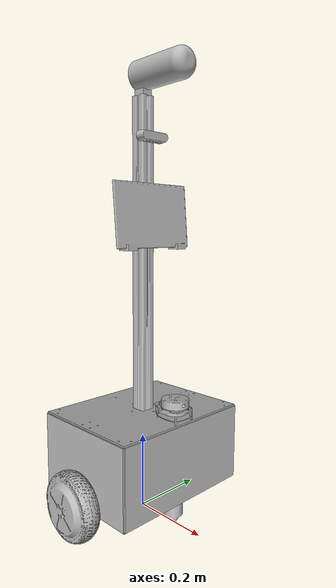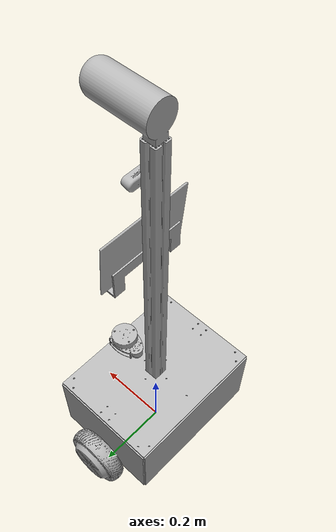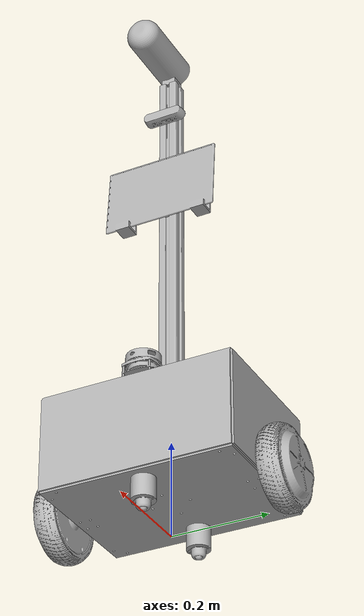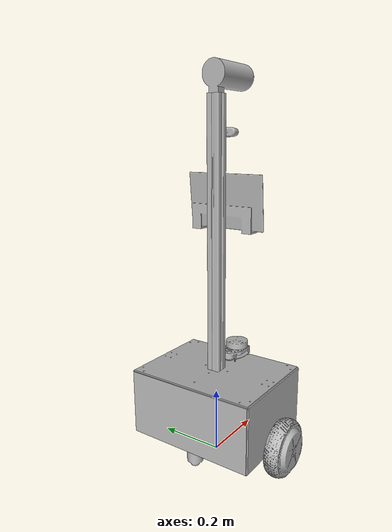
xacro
<?xml version="1.0" ?>
<robot name="zordon" xmlns:xacro="http://www.ros.org/wiki/xacro">

<xacro:include filename="$(find zordon_description)/urdf/materials.xacro" />
<xacro:include filename="$(find zordon_description)/urdf/zordon.trans" />
<xacro:include filename="$(find zordon_description)/gazebo/zordon_materials.gazebo" />
<xacro:include filename="$(find zordon_description)/gazebo/zordon_physics.gazebo" />
<xacro:include filename="$(find zordon_description)/gazebo/zordon_plugins.gazebo" />
<link name="base_link">
  <inertial>
    <origin rpy="0 0 0" xyz="3.723064469949281e-11 9.812910051877157e-15 0.1677003082448717"/>
    <mass value="6.166046891255742"/>
    <inertia ixx="0.169392" ixy="-0.0" ixz="0.0" iyy="0.114116" iyz="0.0" izz="0.204222"/>
  </inertial>
  <visual>
    <origin rpy="0 0 0" xyz="0 0 0"/>
    <geometry>
      <mesh filename="package://zordon_description/meshes/base_link.stl" scale="0.001 0.001 0.001"/>
    </geometry>
    <material name="silver"/>
  </visual>
  <collision>
    <origin rpy="0 0 0" xyz="0 0 0"/>
    <geometry>
      <mesh filename="package://zordon_description/meshes/base_link.stl" scale="0.001 0.001 0.001"/>
    </geometry>
  </collision>
</link>

<link name="pole_1">
  <inertial>
    <origin rpy="0 0 0" xyz="3.10450794759463e-05 -2.372663241329333e-05 0.5039999999999967"/>
    <mass value="2.155664789467976"/>
    <inertia ixx="0.179974" ixy="-0.0" ixz="0.0" iyy="0.179974" iyz="0.0" izz="0.000671"/>
  </inertial>
  <visual>
    <origin rpy="0 0 0" xyz="-0.0 -0.0 -0.068"/>
    <geometry>
      <mesh filename="package://zordon_description/meshes/pole_1.stl" scale="0.001 0.001 0.001"/>
    </geometry>
    <material name="silver"/>
  </visual>
  <collision>
    <origin rpy="0 0 0" xyz="-0.0 -0.0 -0.068"/>
    <geometry>
      <mesh filename="package://zordon_description/meshes/pole_1.stl" scale="0.001 0.001 0.001"/>
    </geometry>
  </collision>
</link>

<link name="carrier_front_1">
  <inertial>
    <origin rpy="0 0 0" xyz="-0.0024999999999974487 -1.397762717635236e-16 -0.025354972716120354"/>
    <mass value="0.09483644907031868"/>
    <inertia ixx="3.6e-05" ixy="-0.0" ixz="0.0" iyy="3.6e-05" iyz="-0.0" izz="2.6e-05"/>
  </inertial>
  <visual>
    <origin rpy="0 0 0" xyz="-0.115 -0.0 -0.068"/>
    <geometry>
      <mesh filename="package://zordon_description/meshes/carrier_front_1.stl" scale="0.001 0.001 0.001"/>
    </geometry>
    <material name="silver"/>
  </visual>
  <collision>
    <origin rpy="0 0 0" xyz="-0.115 -0.0 -0.068"/>
    <geometry>
      <mesh filename="package://zordon_description/meshes/carrier_front_1.stl" scale="0.001 0.001 0.001"/>
    </geometry>
  </collision>
</link>

<link name="carrier_back_1">
  <inertial>
    <origin rpy="0 0 0" xyz="-0.002499999999997296 4.1297534839222783e-17 -0.025354972716120402"/>
    <mass value="0.0948364490703189"/>
    <inertia ixx="3.6e-05" ixy="-0.0" ixz="0.0" iyy="3.6e-05" iyz="-0.0" izz="2.6e-05"/>
  </inertial>
  <visual>
    <origin rpy="0 0 0" xyz="0.11 -0.0 -0.068"/>
    <geometry>
      <mesh filename="package://zordon_description/meshes/carrier_back_1.stl" scale="0.001 0.001 0.001"/>
    </geometry>
    <material name="silver"/>
  </visual>
  <collision>
    <origin rpy="0 0 0" xyz="0.11 -0.0 -0.068"/>
    <geometry>
      <mesh filename="package://zordon_description/meshes/carrier_back_1.stl" scale="0.001 0.001 0.001"/>
    </geometry>
  </collision>
</link>

<link name="lidar_1">
  <inertial>
    <origin rpy="0 0 0" xyz="-0.0010033154083776002 -0.0003817946669328166 0.015807130062577945"/>
    <mass value="0.007170764998860483"/>
    <inertia ixx="3e-06" ixy="-0.0" ixz="-0.0" iyy="3e-06" iyz="-0.0" izz="6e-06"/>
  </inertial>
  <visual>
    <origin rpy="0 0 0" xyz="-0.117069 0.0 -0.3091"/>
    <geometry>
      <mesh filename="package://zordon_description/meshes/lidar_1.stl" scale="0.001 0.001 0.001"/>
    </geometry>
    <material name="silver"/>
  </visual>
  <collision>
    <origin rpy="0 0 0" xyz="-0.117069 0.0 -0.3091"/>
    <geometry>
      <mesh filename="package://zordon_description/meshes/lidar_1.stl" scale="0.001 0.001 0.001"/>
    </geometry>
  </collision>
</link>

<link name="lid_1">
  <inertial>
    <origin rpy="0 0 0" xyz="-0.04720749127638976 0.0004637112712617533 0.021708879448325114"/>
    <mass value="0.17366909548885806"/>
    <inertia ixx="6.2e-05" ixy="-2e-06" ixz="-1e-05" iyy="0.000139" iyz="-1e-06" izz="0.000172"/>
  </inertial>
  <visual>
    <origin rpy="0 0 0" xyz="-0.15 -0.0 -0.276"/>
    <geometry>
      <mesh filename="package://zordon_description/meshes/lid_1.stl" scale="0.001 0.001 0.001"/>
    </geometry>
    <material name="silver"/>
  </visual>
  <collision>
    <origin rpy="0 0 0" xyz="-0.15 -0.0 -0.276"/>
    <geometry>
      <mesh filename="package://zordon_description/meshes/lid_1.stl" scale="0.001 0.001 0.001"/>
    </geometry>
  </collision>
</link>

<link name="wheel_right_1">
  <inertial>
    <origin rpy="0 0 0" xyz="5.1628512443653294e-06 0.03242281804149211 -7.253380073207749e-06"/>
    <mass value="2.1454234162659307"/>
    <inertia ixx="0.004766" ixy="-0.0" ixz="0.0" iyy="0.008516" iyz="-1e-06" izz="0.004766"/>
  </inertial>
  <visual>
    <origin rpy="0 0 0" xyz="-0.0 -0.204 -0.087"/>
    <geometry>
      <mesh filename="package://zordon_description/meshes/wheel_right_1.stl" scale="0.001 0.001 0.001"/>
    </geometry>
    <material name="silver"/>
  </visual>
  <collision>
    <origin rpy="0 0 0" xyz="-0.0 -0.204 -0.087"/>
    <geometry>
      <mesh filename="package://zordon_description/meshes/wheel_right_1.stl" scale="0.001 0.001 0.001"/>
    </geometry>
  </collision>
</link>

<link name="wheel_left_1">
  <inertial>
    <origin rpy="0 0 0" xyz="-5.163218988545872e-06 -0.03242281824339943 -7.253484136743316e-06"/>
    <mass value="2.145423356423246"/>
    <inertia ixx="0.004766" ixy="-0.0" ixz="-0.0" iyy="0.008516" iyz="1e-06" izz="0.004766"/>
  </inertial>
  <visual>
    <origin rpy="0 0 0" xyz="0.0 0.204 -0.087"/>
    <geometry>
      <mesh filename="package://zordon_description/meshes/wheel_left_1.stl" scale="0.001 0.001 0.001"/>
    </geometry>
    <material name="silver"/>
  </visual>
  <collision>
    <origin rpy="0 0 0" xyz="0.0 0.204 -0.087"/>
    <geometry>
      <mesh filename="package://zordon_description/meshes/wheel_left_1.stl" scale="0.001 0.001 0.001"/>
    </geometry>
  </collision>
</link>

<link name="tablet_1">
  <inertial>
    <origin rpy="0 0 0" xyz="0.029419729738753522 -0.004113787966319606 0.2001855232793991"/>
    <mass value="0.2711464872764648"/>
    <inertia ixx="0.001921" ixy="2e-06" ixz="2.9e-05" iyy="0.000599" iyz="1e-05" izz="0.001352"/>
  </inertial>
  <visual>
    <origin rpy="0 0 0" xyz="-0.007557 4.1e-05 -0.572"/>
    <geometry>
      <mesh filename="package://zordon_description/meshes/tablet_1.stl" scale="0.001 0.001 0.001"/>
    </geometry>
    <material name="silver"/>
  </visual>
  <collision>
    <origin rpy="0 0 0" xyz="-0.007557 4.1e-05 -0.572"/>
    <geometry>
      <mesh filename="package://zordon_description/meshes/tablet_1.stl" scale="0.001 0.001 0.001"/>
    </geometry>
  </collision>
</link>

<link name="camera_1">
  <inertial>
    <origin rpy="0 0 0" xyz="0.02482769785381609 3.680493897688813e-05 -0.1000484145977949"/>
    <mass value="0.05109330949423361"/>
    <inertia ixx="3.2e-05" ixy="0.0" ixz="0.0" iyy="5e-06" iyz="0.0" izz="3.2e-05"/>
  </inertial>
  <visual>
    <origin rpy="0 0 0" xyz="-0.007557 4.1e-05 -1.072"/>
    <geometry>
      <mesh filename="package://zordon_description/meshes/camera_1.stl" scale="0.001 0.001 0.001"/>
    </geometry>
    <material name="silver"/>
  </visual>
  <collision>
    <origin rpy="0 0 0" xyz="-0.007557 4.1e-05 -1.072"/>
    <geometry>
      <mesh filename="package://zordon_description/meshes/camera_1.stl" scale="0.001 0.001 0.001"/>
    </geometry>
  </collision>
</link>

<link name="microphone_1">
  <inertial>
    <origin rpy="0 0 0" xyz="0.06142688170807493 3.4919098713711476e-05 0.049195755630006"/>
    <mass value="0.7269285633859404"/>
    <inertia ixx="0.000491" ixy="-0.0" ixz="-3.8e-05" iyy="0.001865" iyz="-0.0" izz="0.001841"/>
  </inertial>
  <visual>
    <origin rpy="0 0 0" xyz="-0.003171 -0.000156 -1.072"/>
    <geometry>
      <mesh filename="package://zordon_description/meshes/microphone_1.stl" scale="0.001 0.001 0.001"/>
    </geometry>
    <material name="silver"/>
  </visual>
  <collision>
    <origin rpy="0 0 0" xyz="-0.003171 -0.000156 -1.072"/>
    <geometry>
      <mesh filename="package://zordon_description/meshes/microphone_1.stl" scale="0.001 0.001 0.001"/>
    </geometry>
  </collision>
</link>

<joint name="pole_base" type="fixed">
  <origin rpy="0 0 0" xyz="0.0 0.0 0.068"/>
  <parent link="base_link"/>
  <child link="pole_1"/>
</joint>

<joint name="carrier_front_base" type="fixed">
  <origin rpy="0 0 0" xyz="0.115 0.0 0.068"/>
  <parent link="base_link"/>
  <child link="carrier_front_1"/>
</joint>

<joint name="carrier_back_base" type="fixed">
  <origin rpy="0 0 0" xyz="-0.11 0.0 0.068"/>
  <parent link="base_link"/>
  <child link="carrier_back_1"/>
</joint>

<joint name="lidar_lid" type="fixed">
  <origin rpy="0 0 0" xyz="-0.032931 -0.0 0.0331"/>
  <parent link="lid_1"/>
  <child link="lidar_1"/>
</joint>

<joint name="lid_base" type="fixed">
  <origin rpy="0 0 0" xyz="0.15 0.0 0.276"/>
  <parent link="base_link"/>
  <child link="lid_1"/>
</joint>

<joint name="right_motor" type="continuous">
  <origin rpy="0 0 0" xyz="0.0 0.204 0.087"/>
  <parent link="base_link"/>
  <child link="wheel_right_1"/>
  <axis xyz="-0.0 -1.0 -0.0"/>
</joint>

<joint name="left_motor" type="continuous">
  <origin rpy="0 0 0" xyz="0.0 -0.204 0.087"/>
  <parent link="base_link"/>
  <child link="wheel_left_1"/>
  <axis xyz="0.0 1.0 0.0"/>
</joint>

<joint name="tablet_pole" type="fixed">
  <origin rpy="0 0 0" xyz="0.007557 -4.1e-05 0.504"/>
  <parent link="pole_1"/>
  <child link="tablet_1"/>
</joint>

<joint name="camera_pole" type="fixed">
  <origin rpy="0 0 0" xyz="0.007557 -4.1e-05 1.004"/>
  <parent link="pole_1"/>
  <child link="camera_1"/>
</joint>

<joint name="microphone_pole" type="fixed">
  <origin rpy="0 0 0" xyz="0.003171 0.000156 1.004"/>
  <parent link="pole_1"/>
  <child link="microphone_1"/>
</joint>

</robot>

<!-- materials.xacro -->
<robot name="zordon" xmlns:xacro="http://www.ros.org/wiki/xacro" >

<material name="silver">
  <color rgba="0.700 0.700 0.700 1.000"/>
</material>

</robot>

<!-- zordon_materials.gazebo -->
<robot name="zordon" xmlns:xacro="http://www.ros.org/wiki/xacro" >

<xacro:property name="primary_color" value="Gazebo/Yellow" />
<xacro:property name="secondary_color" value="Gazebo/DarkGrey" />
<xacro:property name="metal_color" value="Gazebo/Silver" />

<gazebo reference="base_link">
  <material>${primary_color}</material>
</gazebo>

<gazebo reference="pole_1">
  <material>${metal_color}</material>
</gazebo>

<gazebo reference="carrier_front_1">
  <material>${secondary_color}</material>
</gazebo>

<gazebo reference="carrier_back_1">
  <material>${secondary_color}</material>
</gazebo>

<gazebo reference="lidar_1">
  <material>${secondary_color}</material>
</gazebo>

<gazebo reference="lid_1">
  <material>${secondary_color}</material>
</gazebo>

<gazebo reference="wheel_right_1">
  <material>${secondary_color}</material>
</gazebo>

<gazebo reference="wheel_left_1">
  <material>${secondary_color}</material>
</gazebo>

<gazebo reference="tablet_1">
  <material>${secondary_color}</material>
</gazebo>

<gazebo reference="camera_1">
  <material>${secondary_color}</material>
</gazebo>

<gazebo reference="microphone_1">
  <material>${secondary_color}</material>
</gazebo>

</robot>
